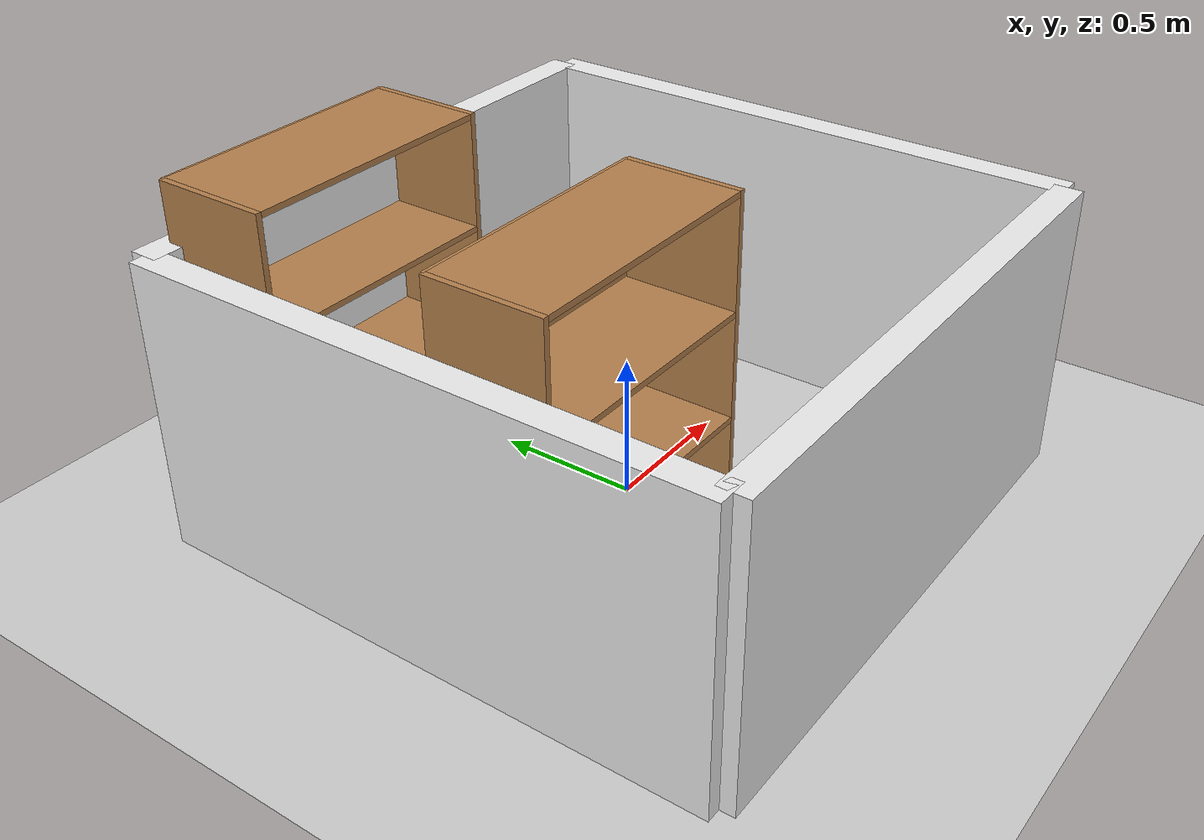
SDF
<sdf version="1.4">
 <world name="default">
  <light name="sun" type="directional">
   <pose>0 0 10 0 -0 0</pose>
   <diffuse>0.8 0.8 0.8 1</diffuse>
   <specular>0.2 0.2 0.2 1</specular>
   <attenuation>
    <range>1000</range>
    <constant>0.9</constant>
    <linear>0.01</linear>
    <quadratic>0.001</quadratic>
   </attenuation>
   <direction>-0.5 0.1 -0.9</direction>
  </light>
  <model name="ground_plane">
   <static>1</static>
   <link name="link">
    <collision name="collision">
     <geometry><plane><normal>0 0 1</normal><size>100 100</size></plane></geometry>
     <surface><friction><ode><mu>100</mu><mu2>50</mu2></ode></friction></surface>
    </collision>
    <visual name="visual">
     <cast_shadows>0</cast_shadows>
     <geometry><plane><normal>0 0 1</normal><size>100 100</size></plane></geometry>
     <material>
      <script><uri>file://media/materials/scripts/gazebo.material</uri><name>Gazebo/Grey</name></script>
     </material>
    </visual>
    <velocity_decay><linear>0</linear><angular>0</angular></velocity_decay>
   </link>
  </model>
  <physics type="ode">
   <max_step_size>0.001</max_step_size>
   <real_time_factor>1</real_time_factor>
   <real_time_update_rate>1000</real_time_update_rate>
   <gravity>0 0 -9.8</gravity>
  </physics>
  <scene><ambient>0.4 0.4 0.4 1</ambient><background>0.7 0.7 0.7 1</background><shadows>1</shadows></scene>
  <spherical_coordinates>
   <surface_model>EARTH_WGS84</surface_model>
   <latitude_deg>0</latitude_deg>
   <longitude_deg>0</longitude_deg>
   <elevation>0</elevation>
   <heading_deg>0</heading_deg>
  </spherical_coordinates>
  <model name="Fence">
   <link name="Wall_10">
    <collision name="Wall_10_Collision">
     <geometry><box><size>2 0.1 1</size></box></geometry>
     <pose>0 0 0.5 0 -0 0</pose>
    </collision>
    <visual name="Wall_10_Visual">
     <pose>0 0 0.5 0 -0 0</pose>
     <geometry><box><size>2 0.1 1</size></box></geometry>
     <material>
      <script><uri>file://media/materials/scripts/gazebo.material</uri><name>Gazebo/White</name></script>
     </material>
    </visual>
    <velocity_decay><linear>0</linear><angular>0</angular></velocity_decay>
    <pose>0 1 0 0 -0 0</pose>
   </link>
   <link name="Wall_11">
    <collision name="Wall_11_Collision">
     <geometry><box><size>2 0.1 1</size></box></geometry>
     <pose>0 0 0.5 0 -0 0</pose>
    </collision>
    <visual name="Wall_11_Visual">
     <pose>0 0 0.5 0 -0 0</pose>
     <geometry><box><size>2 0.1 1</size></box></geometry>
     <material>
      <script><uri>file://media/materials/scripts/gazebo.material</uri><name>Gazebo/White</name></script>
     </material>
    </visual>
    <velocity_decay><linear>0</linear><angular>0</angular></velocity_decay>
    <pose>1 0 0 0 0 -1.5708</pose>
   </link>
   <link name="Wall_12">
    <collision name="Wall_12_Collision">
     <geometry><box><size>2 0.1 1</size></box></geometry>
     <pose>0 0 0.5 0 -0 0</pose>
    </collision>
    <visual name="Wall_12_Visual">
     <pose>0 0 0.5 0 -0 0</pose>
     <geometry><box><size>2 0.1 1</size></box></geometry>
     <material>
      <script><uri>file://media/materials/scripts/gazebo.material</uri><name>Gazebo/White</name></script>
     </material>
    </visual>
    <velocity_decay><linear>0</linear><angular>0</angular></velocity_decay>
    <pose>0 -1 0 0 -0 3.14159</pose>
   </link>
   <link name="Wall_13">
    <collision name="Wall_13_Collision">
     <geometry><box><size>2 0.1 1</size></box></geometry>
     <pose>0 0 0.5 0 -0 0</pose>
    </collision>
    <visual name="Wall_13_Visual">
     <pose>0 0 0.5 0 -0 0</pose>
     <geometry><box><size>2 0.1 1</size></box></geometry>
     <material>
      <script><uri>file://media/materials/scripts/gazebo.material</uri><name>Gazebo/White</name></script>
     </material>
    </visual>
    <velocity_decay><linear>0</linear><angular>0</angular></velocity_decay>
    <pose>-1 0 0 0 -0 1.5708</pose>
   </link>
   <static>1</static>
  </model>
  <model name="bookshelf">
   <static>1</static>
   <link name="link">
    <inertial><mass>1</mass></inertial>
    <collision name="back">
     <pose>0 0.005 0.6 0 -0 0</pose>
     <geometry><box><size>0.9 0.01 1.2</size></box></geometry>
    </collision>
    <visual name="visual1">
     <pose>0 0.005 0.6 0 -0 0</pose>
     <geometry><box><size>0.9 0.01 1.2</size></box></geometry>
     <material>
      <script><uri>file://media/materials/scripts/gazebo.material</uri><name>Gazebo/Wood</name></script>
     </material>
    </visual>
    <collision name="left_side">
     <pose>0.45 -0.195 0.6 0 -0 0</pose>
     <geometry><box><size>0.02 0.4 1.2</size></box></geometry>
    </collision>
    <visual name="visual2">
     <pose>0.45 -0.195 0.6 0 -0 0</pose>
     <geometry><box><size>0.02 0.4 1.2</size></box></geometry>
     <material>
      <script><uri>file://media/materials/scripts/gazebo.material</uri><name>Gazebo/Wood</name></script>
     </material>
    </visual>
    <collision name="right_side">
     <pose>-0.45 -0.195 0.6 0 -0 0</pose>
     <geometry><box><size>0.02 0.4 1.2</size></box></geometry>
    </collision>
    <visual name="visual3">
     <pose>-0.45 -0.195 0.6 0 -0 0</pose>
     <geometry><box><size>0.02 0.4 1.2</size></box></geometry>
     <material>
      <script><uri>file://media/materials/scripts/gazebo.material</uri><name>Gazebo/Wood</name></script>
     </material>
    </visual>
    <collision name="bottom">
     <pose>0 -0.195 0.03 0 -0 0</pose>
     <geometry><box><size>0.88 0.4 0.06</size></box></geometry>
    </collision>
    <visual name="visual4">
     <pose>0 -0.195 0.03 0 -0 0</pose>
     <geometry><box><size>0.88 0.4 0.06</size></box></geometry>
     <material>
      <script><uri>file://media/materials/scripts/gazebo.material</uri><name>Gazebo/Wood</name></script>
     </material>
    </visual>
    <collision name="top">
     <pose>0 -0.195 1.19 0 -0 0</pose>
     <geometry><box><size>0.88 0.4 0.02</size></box></geometry>
    </collision>
    <visual name="visual5">
     <pose>0 -0.195 1.19 0 -0 0</pose>
     <geometry><box><size>0.88 0.4 0.02</size></box></geometry>
     <material>
      <script><uri>file://media/materials/scripts/gazebo.material</uri><name>Gazebo/Wood</name></script>
     </material>
    </visual>
    <collision name="low_shelf">
     <pose>0 -0.195 0.43 0 -0 0</pose>
     <geometry><box><size>0.88 0.4 0.02</size></box></geometry>
    </collision>
    <visual name="visual6">
     <pose>0 -0.195 0.43 0 -0 0</pose>
     <geometry><box><size>0.88 0.4 0.02</size></box></geometry>
     <material>
      <script><uri>file://media/materials/scripts/gazebo.material</uri><name>Gazebo/Wood</name></script>
     </material>
    </visual>
    <collision name="high_shelf">
     <pose>0 -0.195 0.8 0 -0 0</pose>
     <geometry><box><size>0.88 0.4 0.02</size></box></geometry>
    </collision>
    <visual name="visual7">
     <pose>0 -0.195 0.8 0 -0 0</pose>
     <geometry><box><size>0.88 0.4 0.02</size></box></geometry>
     <material>
      <script><uri>file://media/materials/scripts/gazebo.material</uri><name>Gazebo/Wood</name></script>
     </material>
    </visual>
    <velocity_decay><linear>0</linear><angular>0</angular></velocity_decay>
   </link>
   <pose>-0.437579 1 0 0 -0 0</pose>
  </model>
  <model name="bookshelf_0">
   <static>1</static>
   <link name="link">
    <inertial><mass>1</mass></inertial>
    <collision name="back">
     <pose>0 0.005 0.6 0 -0 0</pose>
     <geometry><box><size>0.9 0.01 1.2</size></box></geometry>
    </collision>
    <visual name="visual1">
     <pose>0 0.005 0.6 0 -0 0</pose>
     <geometry><box><size>0.9 0.01 1.2</size></box></geometry>
     <material>
      <script><uri>file://media/materials/scripts/gazebo.material</uri><name>Gazebo/Wood</name></script>
     </material>
    </visual>
    <collision name="left_side">
     <pose>0.45 -0.195 0.6 0 -0 0</pose>
     <geometry><box><size>0.02 0.4 1.2</size></box></geometry>
    </collision>
    <visual name="visual2">
     <pose>0.45 -0.195 0.6 0 -0 0</pose>
     <geometry><box><size>0.02 0.4 1.2</size></box></geometry>
     <material>
      <script><uri>file://media/materials/scripts/gazebo.material</uri><name>Gazebo/Wood</name></script>
     </material>
    </visual>
    <collision name="right_side">
     <pose>-0.45 -0.195 0.6 0 -0 0</pose>
     <geometry><box><size>0.02 0.4 1.2</size></box></geometry>
    </collision>
    <visual name="visual3">
     <pose>-0.45 -0.195 0.6 0 -0 0</pose>
     <geometry><box><size>0.02 0.4 1.2</size></box></geometry>
     <material>
      <script><uri>file://media/materials/scripts/gazebo.material</uri><name>Gazebo/Wood</name></script>
     </material>
    </visual>
    <collision name="bottom">
     <pose>0 -0.195 0.03 0 -0 0</pose>
     <geometry><box><size>0.88 0.4 0.06</size></box></geometry>
    </collision>
    <visual name="visual4">
     <pose>0 -0.195 0.03 0 -0 0</pose>
     <geometry><box><size>0.88 0.4 0.06</size></box></geometry>
     <material>
      <script><uri>file://media/materials/scripts/gazebo.material</uri><name>Gazebo/Wood</name></script>
     </material>
    </visual>
    <collision name="top">
     <pose>0 -0.195 1.19 0 -0 0</pose>
     <geometry><box><size>0.88 0.4 0.02</size></box></geometry>
    </collision>
    <visual name="visual5">
     <pose>0 -0.195 1.19 0 -0 0</pose>
     <geometry><box><size>0.88 0.4 0.02</size></box></geometry>
     <material>
      <script><uri>file://media/materials/scripts/gazebo.material</uri><name>Gazebo/Wood</name></script>
     </material>
    </visual>
    <collision name="low_shelf">
     <pose>0 -0.195 0.43 0 -0 0</pose>
     <geometry><box><size>0.88 0.4 0.02</size></box></geometry>
    </collision>
    <visual name="visual6">
     <pose>0 -0.195 0.43 0 -0 0</pose>
     <geometry><box><size>0.88 0.4 0.02</size></box></geometry>
     <material>
      <script><uri>file://media/materials/scripts/gazebo.material</uri><name>Gazebo/Wood</name></script>
     </material>
    </visual>
    <collision name="high_shelf">
     <pose>0 -0.195 0.8 0 -0 0</pose>
     <geometry><box><size>0.88 0.4 0.02</size></box></geometry>
    </collision>
    <visual name="visual7">
     <pose>0 -0.195 0.8 0 -0 0</pose>
     <geometry><box><size>0.88 0.4 0.02</size></box></geometry>
     <material>
      <script><uri>file://media/materials/scripts/gazebo.material</uri><name>Gazebo/Wood</name></script>
     </material>
    </visual>
    <velocity_decay><linear>0</linear><angular>0</angular></velocity_decay>
   </link>
   <pose>-0.440442 0 0 0 -0 0</pose>
  </model>
 </world>
</sdf>
